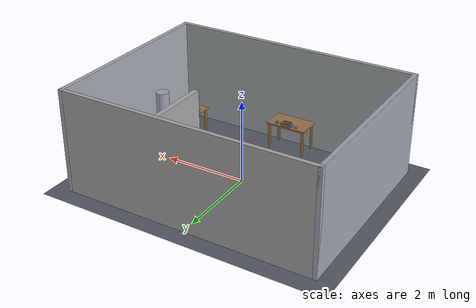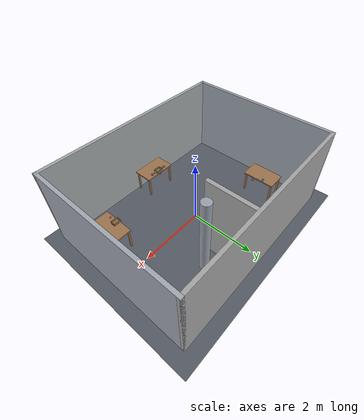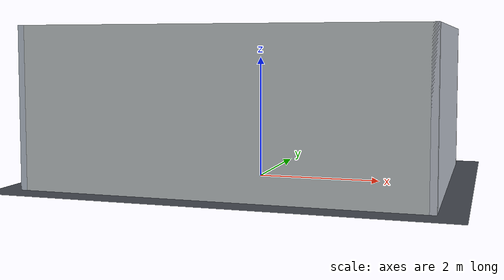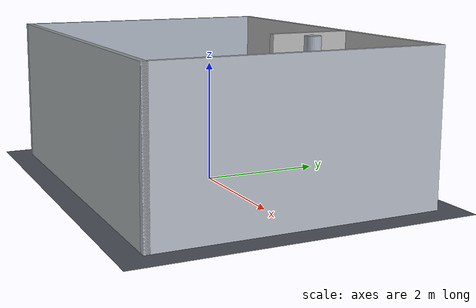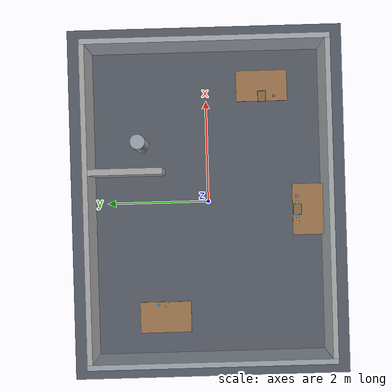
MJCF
<mujoco model="room">
  <!-- Generated by scripts/build_room.py - edit the spec there, not this file. -->

  <statistic center="0 0 0.8" extent="4"/>

  <!-- Manipulation models select impratio 200 for a firm pinch. The shared
       navigation scene keeps impratio 10 so grasp tuning does not change
       wheel contact dynamics. -->
  <option impratio="10"/>

  <visual>
    <headlight diffuse="0.6 0.6 0.6" ambient="0.55 0.55 0.55" specular="0.1 0.1 0.1"/>
    <map znear="0.02"/>
    <quality shadowsize="4096"/>
    <global azimuth="150" elevation="-20" offwidth="1280" offheight="960"/>
  </visual>

  <asset>
    <texture name="tex_floor" type="2d" builtin="checker" rgb1="0.38 0.40 0.44" rgb2="0.30 0.32 0.36" width="512" height="512"/>
    <material name="mat_floor" texture="tex_floor" texuniform="true" texrepeat="1 1" reflectance="0.05"/>
    <material name="mat_wood" rgba="0.62 0.46 0.31 1" specular="0.2"/>
    <texture name="tex_wall_a" type="2d" builtin="checker" rgb1="0.72 0.74 0.78" rgb2="0.58 0.60 0.64" width="256" height="256"/>
    <material name="mat_wall_a" texture="tex_wall_a" texuniform="false" texrepeat="12 5"/>
    <texture name="tex_wall_b" type="2d" builtin="checker" rgb1="0.66 0.70 0.75" rgb2="0.58 0.60 0.64" width="256" height="256"/>
    <material name="mat_wall_b" texture="tex_wall_b" texuniform="false" texrepeat="12 5"/>
    <texture name="tex_wall_c" type="2d" builtin="checker" rgb1="0.75 0.72 0.68" rgb2="0.58 0.60 0.64" width="256" height="256"/>
    <material name="mat_wall_c" texture="tex_wall_c" texuniform="false" texrepeat="12 5"/>
    <texture name="tex_wall_d" type="2d" builtin="checker" rgb1="0.70 0.73 0.70" rgb2="0.58 0.60 0.64" width="256" height="256"/>
    <material name="mat_wall_d" texture="tex_wall_d" texuniform="false" texrepeat="12 5"/>
    <material name="mat_ball" rgba="0.85 0.25 0.2 1" specular="0.3" shininess="0.4"/>
    <material name="mat_crate_ball" rgba="0.55 0.42 0.28 1" specular="0.3" shininess="0.4"/>
    <material name="mat_cube_s" rgba="0.9 0.55 0.15 1" specular="0.3" shininess="0.4"/>
    <material name="mat_cube_m" rgba="0.25 0.6 0.85 1" specular="0.3" shininess="0.4"/>
    <material name="mat_cube_l" rgba="0.35 0.7 0.35 1" specular="0.3" shininess="0.4"/>
    <material name="mat_cube_xl" rgba="0.75 0.3 0.65 1" specular="0.3" shininess="0.4"/>
    <material name="mat_crate_cubes" rgba="0.55 0.42 0.28 1" specular="0.3" shininess="0.4"/>
    <material name="mat_pick_cube" rgba="0.25 0.6 0.85 1" specular="0.3" shininess="0.4"/>
  </asset>

  <worldbody>
    <light name="ceiling_0" pos="-1.6 -1.0 2.45" dir="0 0 -1" diffuse="0.45 0.45 0.45" specular="0.05 0.05 0.05" castshadow="true"/>
    <light name="ceiling_1" pos="1.6 -1.0 2.45" dir="0 0 -1" diffuse="0.45 0.45 0.45" specular="0.05 0.05 0.05" castshadow="false"/>
    <light name="ceiling_2" pos="-1.6 1.0 2.45" dir="0 0 -1" diffuse="0.45 0.45 0.45" specular="0.05 0.05 0.05" castshadow="false"/>
    <light name="ceiling_3" pos="1.6 1.0 2.45" dir="0 0 -1" diffuse="0.45 0.45 0.45" specular="0.05 0.05 0.05" castshadow="false"/>
    <geom name="floor" type="plane" size="3.5 2.75 0.05" material="mat_floor" condim="3" friction="1.5 0.005 0.0001"/>
    <geom name="wall_px" type="box" size="0.05 2.35 1.25" pos="3.05 0 1.25" material="mat_wall_a"/>
    <geom name="wall_nx" type="box" size="0.05 2.35 1.25" pos="-3.05 0 1.25" material="mat_wall_b"/>
    <geom name="wall_py" type="box" size="3.1 0.05 1.25" pos="0 2.3 1.25" material="mat_wall_c"/>
    <geom name="wall_ny" type="box" size="3.1 0.05 1.25" pos="0 -2.3 1.25" material="mat_wall_d"/>
    <geom name="pillar" type="cylinder" size="0.14 1.25" pos="1.15 1.3 1.25" material="mat_wall_b"/>
    <geom name="divider" type="box" size="0.06 0.7 1.25" pos="0.6 1.55 1.25" material="mat_wall_c"/>

    <body name="table_ball" pos="2.25 -1.1 0" quat="0.707107 0 0 0.707107">
      <geom name="table_ball_top" type="box" size="0.5 0.3 0.02" pos="0 0 0.6800" material="mat_wood" friction="1 0.01 0.001" condim="4"/>
      <geom name="table_ball_leg-1-1" type="box" size="0.025 0.025 0.33" pos="-0.4450 -0.2450 0.3300" material="mat_wood"/>
      <geom name="table_ball_leg-11" type="box" size="0.025 0.025 0.33" pos="-0.4450 0.2450 0.3300" material="mat_wood"/>
      <geom name="table_ball_leg1-1" type="box" size="0.025 0.025 0.33" pos="0.4450 -0.2450 0.3300" material="mat_wood"/>
      <geom name="table_ball_leg11" type="box" size="0.025 0.025 0.33" pos="0.4450 0.2450 0.3300" material="mat_wood"/>
    </body>
    <body name="ball" pos="2.04 -1.34 0.7">
      <freejoint/>
      <geom name="ball_0" type="sphere" size="0.025" pos="0 0 0.025" mass="0.09" condim="6" friction="1.2 0.05 0.02" solimp="0.95 0.99 0.001" material="mat_ball"/>
    </body>
    <body name="crate_ball" pos="2.04 -1.1 0.7">
      <freejoint/>
      <geom name="crate_ball_0" type="box" size="0.11 0.08 0.003" pos="0 0 0.003" mass="0.08" condim="4" friction="1 0.02 0.001" solimp="0.95 0.99 0.001" material="mat_crate_ball"/>
      <geom name="crate_ball_1" type="box" size="0.11 0.003 0.04" pos="0 0.077 0.04" mass="0.08" condim="4" friction="1 0.02 0.001" solimp="0.95 0.99 0.001" material="mat_crate_ball"/>
      <geom name="crate_ball_2" type="box" size="0.11 0.003 0.04" pos="0 -0.077 0.04" mass="0.08" condim="4" friction="1 0.02 0.001" solimp="0.95 0.99 0.001" material="mat_crate_ball"/>
      <geom name="crate_ball_3" type="box" size="0.003 0.074 0.04" pos="0.107 0 0.04" mass="0.08" condim="4" friction="1 0.02 0.001" solimp="0.95 0.99 0.001" material="mat_crate_ball"/>
      <geom name="crate_ball_4" type="box" size="0.003 0.074 0.04" pos="-0.107 0 0.04" mass="0.08" condim="4" friction="1 0.02 0.001" solimp="0.95 0.99 0.001" material="mat_crate_ball"/>
    </body>

    <body name="table_cubes" pos="-0.2 -1.95 0" quat="1 0 0 0">
      <geom name="table_cubes_top" type="box" size="0.5 0.3 0.02" pos="0 0 0.6800" material="mat_wood" friction="1 0.01 0.001" condim="4"/>
      <geom name="table_cubes_leg-1-1" type="box" size="0.025 0.025 0.33" pos="-0.4450 -0.2450 0.3300" material="mat_wood"/>
      <geom name="table_cubes_leg-11" type="box" size="0.025 0.025 0.33" pos="-0.4450 0.2450 0.3300" material="mat_wood"/>
      <geom name="table_cubes_leg1-1" type="box" size="0.025 0.025 0.33" pos="0.4450 -0.2450 0.3300" material="mat_wood"/>
      <geom name="table_cubes_leg11" type="box" size="0.025 0.025 0.33" pos="0.4450 0.2450 0.3300" material="mat_wood"/>
    </body>
    <body name="cube_s" pos="-0.46 -1.74 0.7">
      <freejoint/>
      <geom name="cube_s_0" type="box" size="0.028 0.028 0.028" pos="0 0 0.028" mass="0.11" condim="4" friction="1 0.02 0.001" solimp="0.95 0.99 0.001" material="mat_cube_s"/>
    </body>
    <body name="cube_m" pos="-0.34 -1.74 0.7">
      <freejoint/>
      <geom name="cube_m_0" type="box" size="0.0285 0.0285 0.0285" pos="0 0 0.0285" mass="0.12" condim="4" friction="1 0.02 0.001" solimp="0.95 0.99 0.001" material="mat_cube_m"/>
    </body>
    <body name="cube_l" pos="-0.06 -1.74 0.7">
      <freejoint/>
      <geom name="cube_l_0" type="box" size="0.029 0.029 0.029" pos="0 0 0.029" mass="0.13" condim="4" friction="1 0.02 0.001" solimp="0.95 0.99 0.001" material="mat_cube_l"/>
    </body>
    <body name="cube_xl" pos="0.06 -1.74 0.7">
      <freejoint/>
      <geom name="cube_xl_0" type="box" size="0.0285 0.0285 0.0285" pos="0 0 0.0285" mass="0.12" condim="4" friction="1 0.02 0.001" solimp="0.95 0.99 0.001" material="mat_cube_xl"/>
    </body>
    <body name="crate_cubes" pos="-0.2 -1.74 0.7">
      <freejoint/>
      <geom name="crate_cubes_0" type="box" size="0.11 0.08 0.003" pos="0 0 0.003" mass="0.08" condim="4" friction="1 0.02 0.001" solimp="0.95 0.99 0.001" material="mat_crate_cubes"/>
      <geom name="crate_cubes_1" type="box" size="0.11 0.003 0.04" pos="0 0.077 0.04" mass="0.08" condim="4" friction="1 0.02 0.001" solimp="0.95 0.99 0.001" material="mat_crate_cubes"/>
      <geom name="crate_cubes_2" type="box" size="0.11 0.003 0.04" pos="0 -0.077 0.04" mass="0.08" condim="4" friction="1 0.02 0.001" solimp="0.95 0.99 0.001" material="mat_crate_cubes"/>
      <geom name="crate_cubes_3" type="box" size="0.003 0.074 0.04" pos="0.107 0 0.04" mass="0.08" condim="4" friction="1 0.02 0.001" solimp="0.95 0.99 0.001" material="mat_crate_cubes"/>
      <geom name="crate_cubes_4" type="box" size="0.003 0.074 0.04" pos="-0.107 0 0.04" mass="0.08" condim="4" friction="1 0.02 0.001" solimp="0.95 0.99 0.001" material="mat_crate_cubes"/>
    </body>

    <body name="table_pick" pos="-2.25 0.9 0" quat="0.707107 0 0 -0.707107">
      <geom name="table_pick_top" type="box" size="0.5 0.3 0.02" pos="0 0 0.6800" material="mat_wood" friction="1 0.01 0.001" condim="4"/>
      <geom name="table_pick_leg-1-1" type="box" size="0.025 0.025 0.33" pos="-0.4450 -0.2450 0.3300" material="mat_wood"/>
      <geom name="table_pick_leg-11" type="box" size="0.025 0.025 0.33" pos="-0.4450 0.2450 0.3300" material="mat_wood"/>
      <geom name="table_pick_leg1-1" type="box" size="0.025 0.025 0.33" pos="0.4450 -0.2450 0.3300" material="mat_wood"/>
      <geom name="table_pick_leg11" type="box" size="0.025 0.025 0.33" pos="0.4450 0.2450 0.3300" material="mat_wood"/>
      <site name="pick_target_0_-1" type="box" pos="-0.008 0.24 0.702" size="0.001 0.038 0.001" rgba="0.2 1 0.6 1"/>
      <site name="pick_target_0_1" type="box" pos="0.068 0.24 0.702" size="0.001 0.038 0.001" rgba="0.2 1 0.6 1"/>
      <site name="pick_target_1_-1" type="box" pos="0.03 0.202 0.702" size="0.038 0.001 0.001" rgba="0.2 1 0.6 1"/>
      <site name="pick_target_1_1" type="box" pos="0.03 0.278 0.702" size="0.038 0.001 0.001" rgba="0.2 1 0.6 1"/>
    </body>
    <body name="pick_cube" pos="-2.01 1.04 0.7">
      <freejoint/>
      <geom name="pick_cube_0" type="box" size="0.024 0.024 0.024" pos="0 0 0.024" mass="0.07" condim="4" friction="1 0.02 0.001" solimp="0.95 0.99 0.001" material="mat_pick_cube"/>
    </body>
  </worldbody>
</mujoco>
